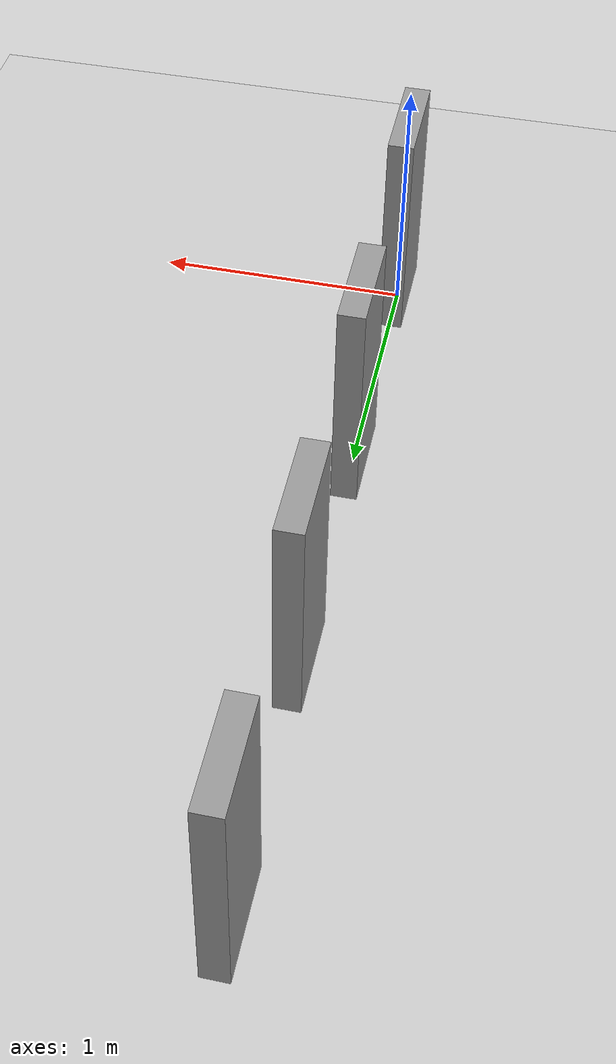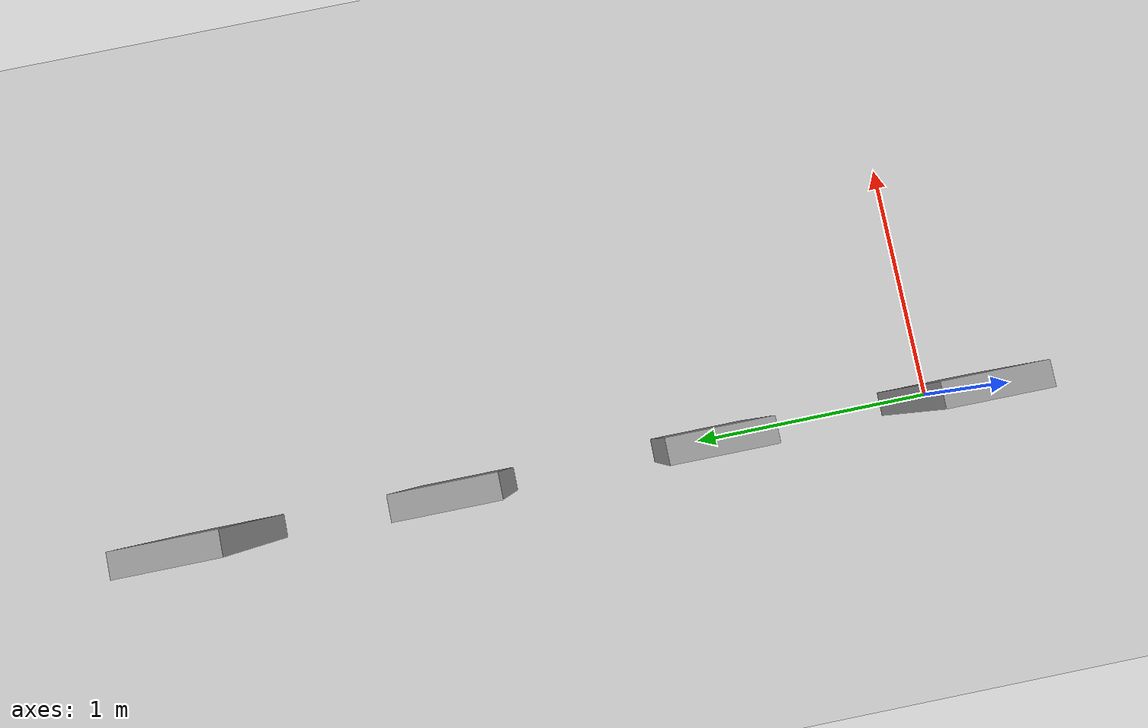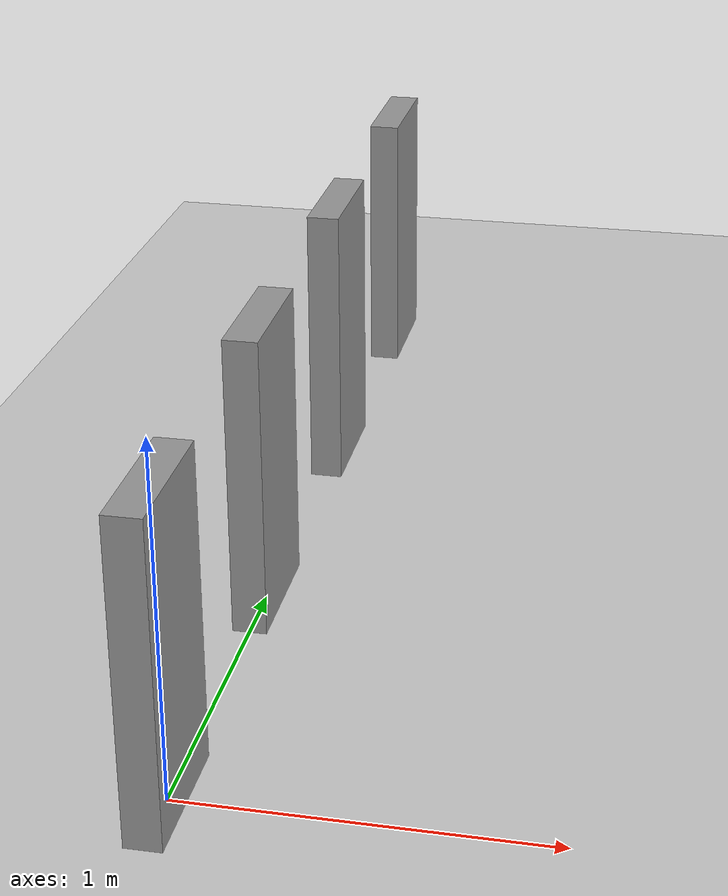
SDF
<?xml version="1.0" ?>
<sdf version="1.5">
  <world name="pose_rotations">
    <include>
      <uri>model://sun</uri>
    </include>
    <include>
      <uri>model://ground_plane</uri>
    </include>

    <model name="box010409_ref">
      <pose>0 0 0.45  0 0 0</pose>
      <link name="link">
        <inertial>
          <pose>0 0 0  0 0 0</pose>
          <mass>12</mass>
          <inertia>
            <ixx>0.97</ixx>
            <iyy>0.82</iyy>
            <izz>0.17</izz>
            <ixy>0</ixy>
            <ixz>0</ixz>
            <iyz>0</iyz>
          </inertia>
        </inertial>
        <collision name="collision">
          <pose>0 0 0  0 0 0</pose>
          <geometry>
            <box>
              <size>0.1 0.4 0.9</size>
            </box>
          </geometry>
        </collision>
        <visual name="visual">
          <pose>0 0 0  0 0 0</pose>
          <geometry>
            <box>
              <size>0.1 0.4 0.9</size>
            </box>
          </geometry>
          <material>
            <script>
              <uri>file://media/materials/scripts/gazebo.material</uri>
              <name>Gazebo/Grey</name>
            </script>
          </material>
        </visual>
      </link>
    </model>

    <model name="box010409_x90">
      <pose>0 1 0.45  1.5707963267948966 0 0</pose>
      <link name="link">
        <inertial>
          <pose>0 0 0  -1.5707963267948966 0 0</pose>
          <mass>12</mass>
          <inertia>
            <ixx>0.97</ixx>
            <iyy>0.82</iyy>
            <izz>0.17</izz>
            <ixy>0</ixy>
            <ixz>0</ixz>
            <iyz>0</iyz>
          </inertia>
        </inertial>
        <collision name="collision">
          <pose>0 0 0  -1.5707963267948966 0 0</pose>
          <geometry>
            <box>
              <size>0.1 0.4 0.9</size>
            </box>
          </geometry>
        </collision>
        <visual name="visual">
          <pose>0 0 0  -1.5707963267948966 0 0</pose>
          <geometry>
            <box>
              <size>0.1 0.4 0.9</size>
            </box>
          </geometry>
          <material>
            <script>
              <uri>file://media/materials/scripts/gazebo.material</uri>
              <name>Gazebo/Grey</name>
            </script>
          </material>
        </visual>
      </link>
    </model>

    <model name="box010409_y90">
      <pose>0 2 0.45  0 1.5707963267948966 0</pose>
      <link name="link">
        <inertial>
          <pose>0 0 0  0 -1.5707963267948966 0</pose>
          <mass>12</mass>
          <inertia>
            <ixx>0.97</ixx>
            <iyy>0.82</iyy>
            <izz>0.17</izz>
            <ixy>0</ixy>
            <ixz>0</ixz>
            <iyz>0</iyz>
          </inertia>
        </inertial>
        <collision name="collision">
          <pose>0 0 0  0 -1.5707963267948966 0</pose>
          <geometry>
            <box>
              <size>0.1 0.4 0.9</size>
            </box>
          </geometry>
        </collision>
        <visual name="visual">
          <pose>0 0 0  0 -1.5707963267948966 0</pose>
          <geometry>
            <box>
              <size>0.1 0.4 0.9</size>
            </box>
          </geometry>
          <material>
            <script>
              <uri>file://media/materials/scripts/gazebo.material</uri>
              <name>Gazebo/Grey</name>
            </script>
          </material>
        </visual>
      </link>
    </model>

    <model name="box010409_z90">
      <pose>0 3 0.45  0 0 1.5707963267948966</pose>
      <link name="link">
        <inertial>
          <pose>0 0 0  0 0 -1.5707963267948966</pose>
          <mass>12</mass>
          <inertia>
            <ixx>0.97</ixx>
            <iyy>0.82</iyy>
            <izz>0.17</izz>
            <ixy>0</ixy>
            <ixz>0</ixz>
            <iyz>0</iyz>
          </inertia>
        </inertial>
        <collision name="collision">
          <pose>0 0 0  0 0 -1.5707963267948966</pose>
          <geometry>
            <box>
              <size>0.1 0.4 0.9</size>
            </box>
          </geometry>
        </collision>
        <visual name="visual">
          <pose>0 0 0  0 0 -1.5707963267948966</pose>
          <geometry>
            <box>
              <size>0.1 0.4 0.9</size>
            </box>
          </geometry>
          <material>
            <script>
              <uri>file://media/materials/scripts/gazebo.material</uri>
              <name>Gazebo/Grey</name>
            </script>
          </material>
        </visual>
      </link>
    </model>

  </world>
</sdf>
